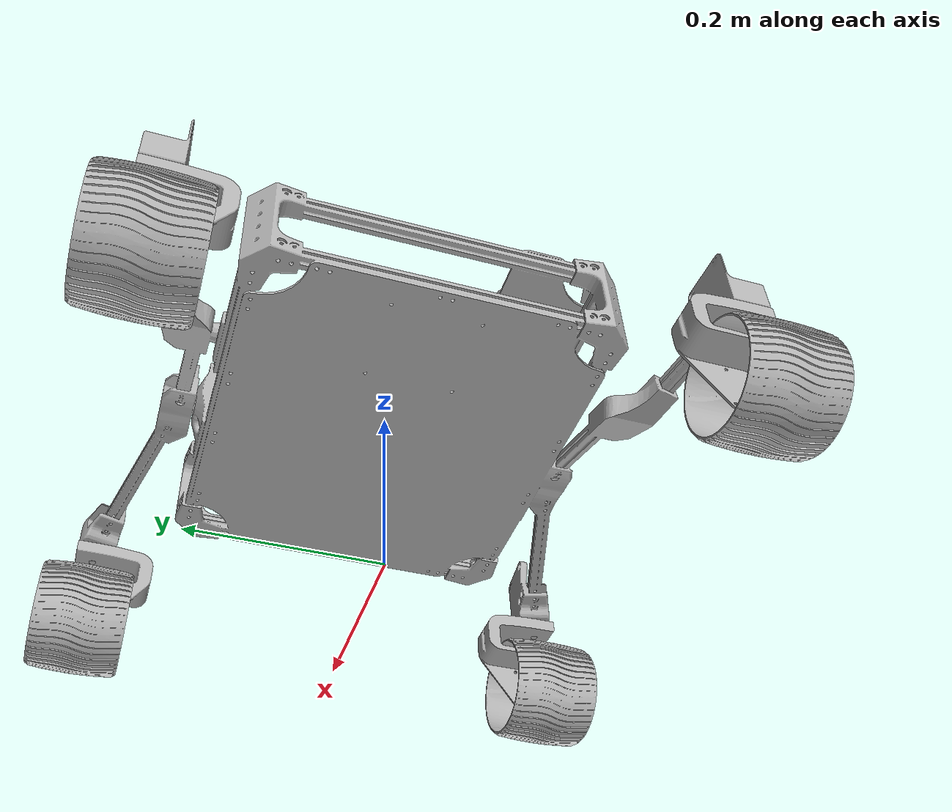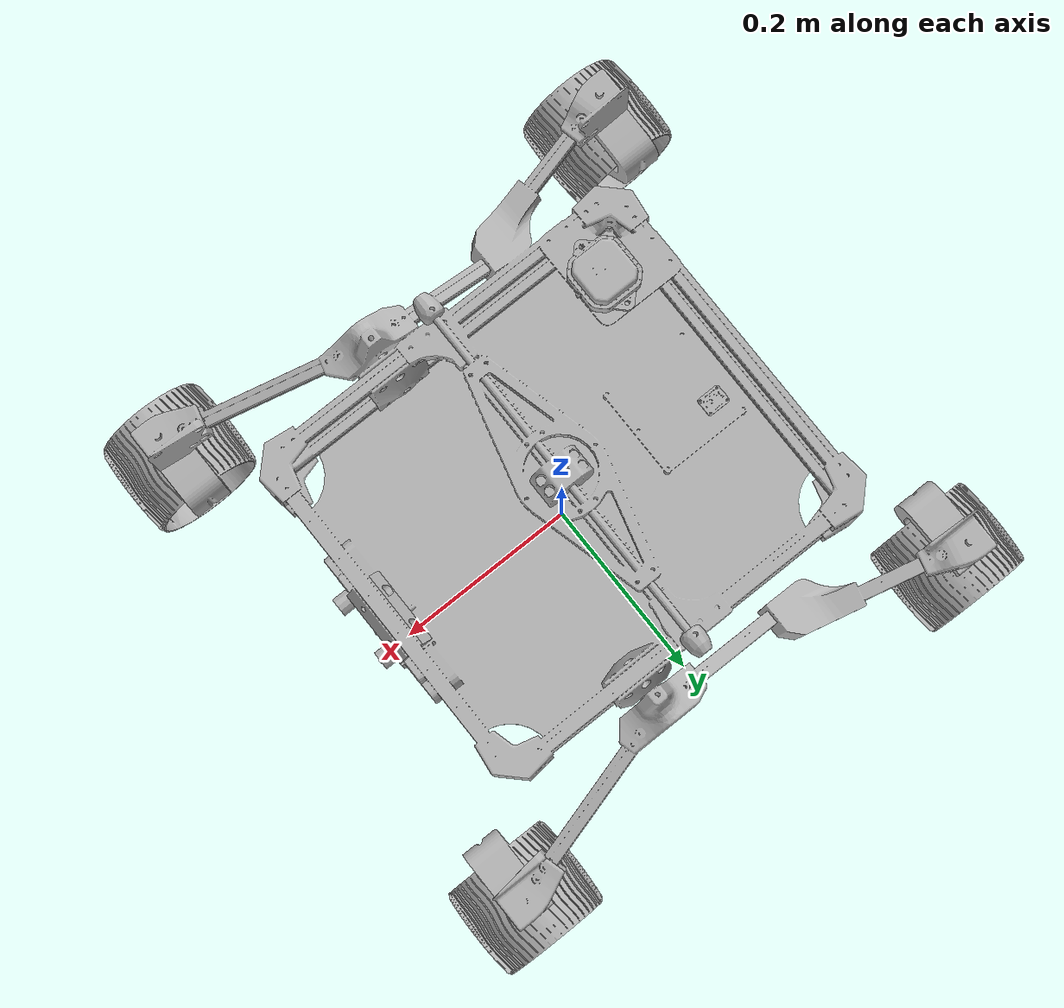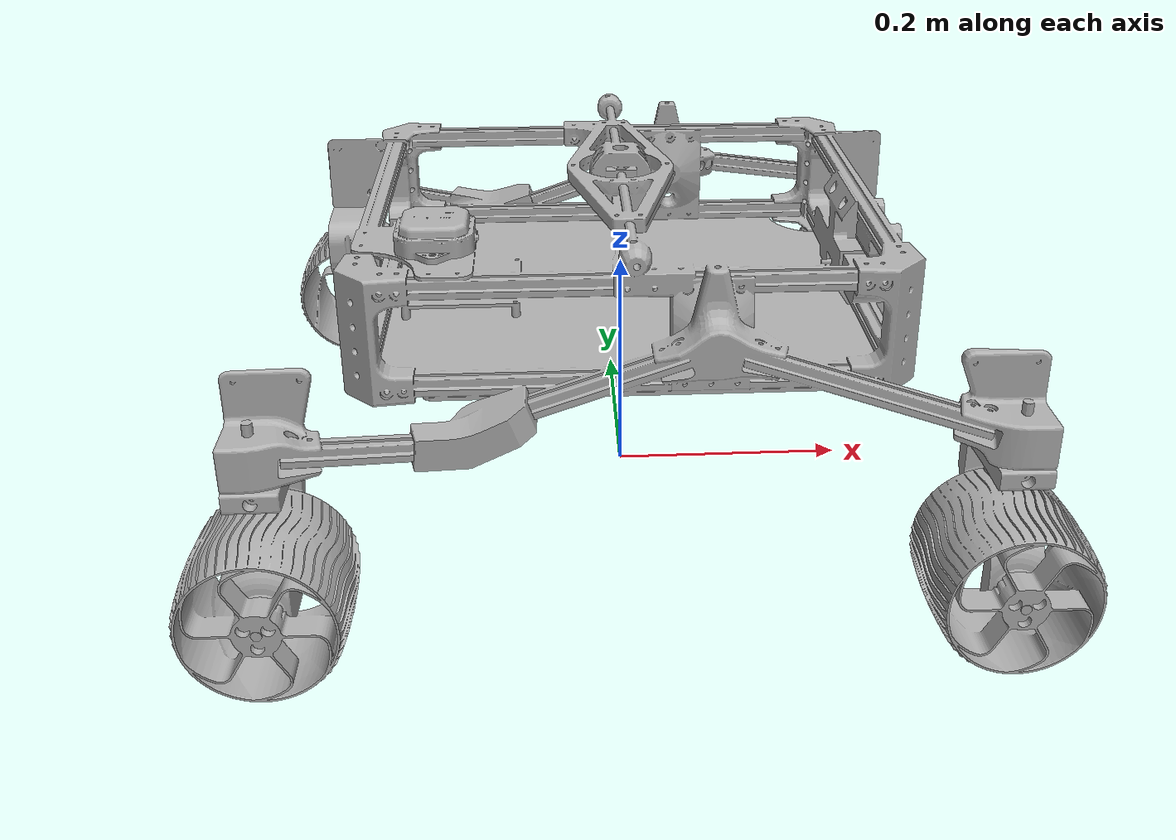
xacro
<?xml version="1.0" ?>
<robot name="mr" xmlns:xacro="http://www.ros.org/wiki/xacro">

<xacro:include filename="$(find mr_description)/urdf/materials.xacro" />
<xacro:include filename="$(find mr_description)/urdf/mr.trans" />
<xacro:include filename="$(find mr_description)/urdf/mr.gazebo" />
<link name="base_link">
  <inertial>
    <origin xyz="0.024026657884178255 -0.0006258179246740081 0.20670151360258557" rpy="0 0 0"/>
    <mass value="21.35468957671006"/>
    <inertia ixx="0.66684" iyy="0.554551" izz="1.15912" ixy="-0.003904" iyz="0.001173" ixz="-0.011842"/>
  </inertial>
  <visual>
    <origin xyz="0 0 0" rpy="0 0 0"/>
    <geometry>
      <mesh filename="package://mr_description/meshes/base_link.stl" scale="0.001 0.001 0.001"/>
    </geometry>
    <material name="silver"/>
  </visual>
  <collision>
    <origin xyz="0 0 0" rpy="0 0 0"/>
    <geometry>
      <mesh filename="package://mr_description/meshes/base_link.stl" scale="0.001 0.001 0.001"/>
    </geometry>
  </collision>
</link>

<link name="gps_frame_1">
  <inertial>
    <origin xyz="0.04203771345163801 -0.04450004444313828 -0.032741799072665945" rpy="0 0 0"/>
    <mass value="0.5490777887987831"/>
    <inertia ixx="0.000171" iyy="0.000157" izz="0.000284" ixy="0.0" iyz="-0.0" ixz="0.0"/>
  </inertial>
  <visual>
    <origin xyz="0.19102 0.078471 -0.310862" rpy="0 0 0"/>
    <geometry>
      <mesh filename="package://mr_description/meshes/gps_frame_1.stl" scale="0.001 0.001 0.001"/>
    </geometry>
    <material name="silver"/>
  </visual>
  <collision>
    <origin xyz="0.19102 0.078471 -0.310862" rpy="0 0 0"/>
    <geometry>
      <mesh filename="package://mr_description/meshes/gps_frame_1.stl" scale="0.001 0.001 0.001"/>
    </geometry>
  </collision>
</link>

<link name="imu_frame_1">
  <inertial>
    <origin xyz="-0.00045074052321916747 -6.454628720427638e-05 0.0010066891826769897" rpy="0 0 0"/>
    <mass value="0.0068771582800528615"/>
    <inertia ixx="0.0" iyy="0.0" izz="1e-06" ixy="-0.0" iyz="0.0" ixz="0.0"/>
  </inertial>
  <visual>
    <origin xyz="0.167686 -0.023354 -0.183862" rpy="0 0 0"/>
    <geometry>
      <mesh filename="package://mr_description/meshes/imu_frame_1.stl" scale="0.001 0.001 0.001"/>
    </geometry>
    <material name="silver"/>
  </visual>
  <collision>
    <origin xyz="0.167686 -0.023354 -0.183862" rpy="0 0 0"/>
    <geometry>
      <mesh filename="package://mr_description/meshes/imu_frame_1.stl" scale="0.001 0.001 0.001"/>
    </geometry>
  </collision>
</link>

<link name="laser_frame_1">
  <inertial>
    <origin xyz="0.0004996109498802137 4.489669068637181e-07 9.742873197104984e-08" rpy="0 0 0"/>
    <mass value="0.00015413438956675583"/>
    <inertia ixx="0.0" iyy="0.0" izz="0.0" ixy="0.0" iyz="0.0" ixz="-0.0"/>
  </inertial>
  <visual>
    <origin xyz="-0.234807 -0.025936 -0.233538" rpy="0 0 0"/>
    <geometry>
      <mesh filename="package://mr_description/meshes/laser_frame_1.stl" scale="0.001 0.001 0.001"/>
    </geometry>
    <material name="silver"/>
  </visual>
  <collision>
    <origin xyz="-0.234807 -0.025936 -0.233538" rpy="0 0 0"/>
    <geometry>
      <mesh filename="package://mr_description/meshes/laser_frame_1.stl" scale="0.001 0.001 0.001"/>
    </geometry>
  </collision>
</link>

<link name="odom_frame_1">
  <inertial>
    <origin xyz="0.0005000940787980579 3.9197321903333346e-07 3.336085294958213e-07" rpy="0 0 0"/>
    <mass value="0.00015413438956675583"/>
    <inertia ixx="0.0" iyy="0.0" izz="0.0" ixy="0.0" iyz="0.0" ixz="0.0"/>
  </inertial>
  <visual>
    <origin xyz="-0.222149 -0.000936 -0.217362" rpy="0 0 0"/>
    <geometry>
      <mesh filename="package://mr_description/meshes/odom_frame_1.stl" scale="0.001 0.001 0.001"/>
    </geometry>
    <material name="silver"/>
  </visual>
  <collision>
    <origin xyz="-0.222149 -0.000936 -0.217362" rpy="0 0 0"/>
    <geometry>
      <mesh filename="package://mr_description/meshes/odom_frame_1.stl" scale="0.001 0.001 0.001"/>
    </geometry>
  </collision>
</link>

<link name="swerve_front_right_frame_1">
  <inertial>
    <origin xyz="0.0010343956323994319 0.018975093583987912 -0.02779662916861418" rpy="0 0 0"/>
    <mass value="1.0189004950565936"/>
    <inertia ixx="0.002056" iyy="0.001238" izz="0.001104" ixy="0.0" iyz="-0.000503" ixz="3.9e-05"/>
  </inertial>
  <visual>
    <origin xyz="-0.269529 0.278957 -0.142207" rpy="0 0 0"/>
    <geometry>
      <mesh filename="package://mr_description/meshes/swerve_front_right_frame_1.stl" scale="0.001 0.001 0.001"/>
    </geometry>
    <material name="silver"/>
  </visual>
  <collision>
    <origin xyz="-0.269529 0.278957 -0.142207" rpy="0 0 0"/>
    <geometry>
      <mesh filename="package://mr_description/meshes/swerve_front_right_frame_1.stl" scale="0.001 0.001 0.001"/>
    </geometry>
  </collision>
</link>

<link name="wheel_front_right_frame_1">
  <inertial>
    <origin xyz="1.362369520530038e-07 0.03942350115985577 -7.786926539653238e-06" rpy="0 0 0"/>
    <mass value="0.9174820903948062"/>
    <inertia ixx="0.001993" iyy="0.002484" izz="0.001993" ixy="0.0" iyz="-0.0" ixz="0.0"/>
  </inertial>
  <visual>
    <origin xyz="-0.26953 0.328957 -0.062207" rpy="0 0 0"/>
    <geometry>
      <mesh filename="package://mr_description/meshes/wheel_front_right_frame_1.stl" scale="0.001 0.001 0.001"/>
    </geometry>
    <material name="silver"/>
  </visual>
  <collision>
    <origin xyz="-0.26953 0.328957 -0.062207" rpy="0 0 0"/>
    <geometry>
      <mesh filename="package://mr_description/meshes/wheel_front_right_frame_1.stl" scale="0.001 0.001 0.001"/>
    </geometry>
  </collision>
</link>

<link name="swerve_back_right_frame_1">
  <inertial>
    <origin xyz="0.0010344132531723282 0.01897509358415106 -0.027797551125660097" rpy="0 0 0"/>
    <mass value="1.0189004950565936"/>
    <inertia ixx="0.002056" iyy="0.001238" izz="0.001104" ixy="0.0" iyz="-0.000503" ixz="3.9e-05"/>
  </inertial>
  <visual>
    <origin xyz="0.269794 0.278957 -0.142203" rpy="0 0 0"/>
    <geometry>
      <mesh filename="package://mr_description/meshes/swerve_back_right_frame_1.stl" scale="0.001 0.001 0.001"/>
    </geometry>
    <material name="silver"/>
  </visual>
  <collision>
    <origin xyz="0.269794 0.278957 -0.142203" rpy="0 0 0"/>
    <geometry>
      <mesh filename="package://mr_description/meshes/swerve_back_right_frame_1.stl" scale="0.001 0.001 0.001"/>
    </geometry>
  </collision>
</link>

<link name="wheel_back_right_frame_1">
  <inertial>
    <origin xyz="1.538577255044693e-07 0.0394235011600188 -8.708883585693827e-06" rpy="0 0 0"/>
    <mass value="0.9174820903948062"/>
    <inertia ixx="0.001993" iyy="0.002484" izz="0.001993" ixy="0.0" iyz="-0.0" ixz="0.0"/>
  </inertial>
  <visual>
    <origin xyz="0.269793 0.328957 -0.062203" rpy="0 0 0"/>
    <geometry>
      <mesh filename="package://mr_description/meshes/wheel_back_right_frame_1.stl" scale="0.001 0.001 0.001"/>
    </geometry>
    <material name="silver"/>
  </visual>
  <collision>
    <origin xyz="0.269793 0.328957 -0.062203" rpy="0 0 0"/>
    <geometry>
      <mesh filename="package://mr_description/meshes/wheel_back_right_frame_1.stl" scale="0.001 0.001 0.001"/>
    </geometry>
  </collision>
</link>

<link name="swerve_back_left_frame_1">
  <inertial>
    <origin xyz="-0.0010334680806184937 -0.018975196395395133 -0.02779756999752095" rpy="0 0 0"/>
    <mass value="1.0189004950565936"/>
    <inertia ixx="0.002056" iyy="0.001238" izz="0.001104" ixy="0.0" iyz="0.000503" ixz="-3.9e-05"/>
  </inertial>
  <visual>
    <origin xyz="0.269794 -0.28083 -0.142203" rpy="0 0 0"/>
    <geometry>
      <mesh filename="package://mr_description/meshes/swerve_back_left_frame_1.stl" scale="0.001 0.001 0.001"/>
    </geometry>
    <material name="silver"/>
  </visual>
  <collision>
    <origin xyz="0.269794 -0.28083 -0.142203" rpy="0 0 0"/>
    <geometry>
      <mesh filename="package://mr_description/meshes/swerve_back_left_frame_1.stl" scale="0.001 0.001 0.001"/>
    </geometry>
  </collision>
</link>

<link name="wheel_back_left_frame_1">
  <inertial>
    <origin xyz="-2.5570862910440084e-07 -0.03942360397126338 -8.708887329546278e-06" rpy="0 0 0"/>
    <mass value="0.9174820903948062"/>
    <inertia ixx="0.001993" iyy="0.002484" izz="0.001993" ixy="0.0" iyz="0.0" ixz="-0.0"/>
  </inertial>
  <visual>
    <origin xyz="0.269793 -0.33083 -0.062203" rpy="0 0 0"/>
    <geometry>
      <mesh filename="package://mr_description/meshes/wheel_back_left_frame_1.stl" scale="0.001 0.001 0.001"/>
    </geometry>
    <material name="silver"/>
  </visual>
  <collision>
    <origin xyz="0.269793 -0.33083 -0.062203" rpy="0 0 0"/>
    <geometry>
      <mesh filename="package://mr_description/meshes/wheel_back_left_frame_1.stl" scale="0.001 0.001 0.001"/>
    </geometry>
  </collision>
</link>

<link name="swerve_front_left_frame_1">
  <inertial>
    <origin xyz="-0.001033485701390724 -0.018975196395395466 -0.027796648039575877" rpy="0 0 0"/>
    <mass value="1.0189004950565936"/>
    <inertia ixx="0.002056" iyy="0.001238" izz="0.001104" ixy="0.0" iyz="0.000503" ixz="-3.9e-05"/>
  </inertial>
  <visual>
    <origin xyz="-0.269529 -0.28083 -0.142207" rpy="0 0 0"/>
    <geometry>
      <mesh filename="package://mr_description/meshes/swerve_front_left_frame_1.stl" scale="0.001 0.001 0.001"/>
    </geometry>
    <material name="silver"/>
  </visual>
  <collision>
    <origin xyz="-0.269529 -0.28083 -0.142207" rpy="0 0 0"/>
    <geometry>
      <mesh filename="package://mr_description/meshes/swerve_front_left_frame_1.stl" scale="0.001 0.001 0.001"/>
    </geometry>
  </collision>
</link>

<link name="wheel_front_left_frame_1">
  <inertial>
    <origin xyz="-2.733294070522696e-07 -0.03942360397126321 -7.786929384752395e-06" rpy="0 0 0"/>
    <mass value="0.9174820903948062"/>
    <inertia ixx="0.001993" iyy="0.002484" izz="0.001993" ixy="0.0" iyz="0.0" ixz="-0.0"/>
  </inertial>
  <visual>
    <origin xyz="-0.26953 -0.33083 -0.062207" rpy="0 0 0"/>
    <geometry>
      <mesh filename="package://mr_description/meshes/wheel_front_left_frame_1.stl" scale="0.001 0.001 0.001"/>
    </geometry>
    <material name="silver"/>
  </visual>
  <collision>
    <origin xyz="-0.26953 -0.33083 -0.062207" rpy="0 0 0"/>
    <geometry>
      <mesh filename="package://mr_description/meshes/wheel_front_left_frame_1.stl" scale="0.001 0.001 0.001"/>
    </geometry>
  </collision>
</link>

<joint name="gps_link" type="fixed">
  <origin xyz="-0.19102 -0.078471 0.310862" rpy="0 0 0"/>
  <parent link="base_link"/>
  <child link="gps_frame_1"/>
</joint>

<joint name="imu_link" type="fixed">
  <origin xyz="-0.167686 0.023354 0.183862" rpy="0 0 0"/>
  <parent link="base_link"/>
  <child link="imu_frame_1"/>
</joint>

<joint name="laser_link" type="fixed">
  <origin xyz="0.234807 0.025936 0.233538" rpy="0 0 0"/>
  <parent link="base_link"/>
  <child link="laser_frame_1"/>
</joint>

<joint name="odom_link" type="fixed">
  <origin xyz="0.222149 0.000936 0.217362" rpy="0 0 0"/>
  <parent link="base_link"/>
  <child link="odom_frame_1"/>
</joint>

<joint name="swerve_front_right_link" type="revolute">
  <origin xyz="0.269529 -0.278957 0.142207" rpy="0 0 0"/>
  <parent link="base_link"/>
  <child link="swerve_front_right_frame_1"/>
  <axis xyz="-9e-06 0.0 1.0"/>
  <limit upper="1.570796" lower="-1.570796" effort="100" velocity="100"/>
  <dynamics damping="0.7"/>
</joint>

<joint name="wheel_front_right_link" type="continuous">
  <origin xyz="1e-06 -0.05 -0.08" rpy="0 0 0"/>
  <parent link="swerve_front_right_frame_1"/>
  <child link="wheel_front_right_frame_1"/>
  <axis xyz="-0.0 1.0 -0.0"/>
</joint>

<joint name="swerve_back_right_link" type="revolute">
  <origin xyz="-0.269794 -0.278957 0.142203" rpy="0 0 0"/>
  <parent link="base_link"/>
  <child link="swerve_back_right_frame_1"/>
  <axis xyz="9e-06 -0.0 1.0"/>
  <limit upper="1.570796" lower="-1.570796" effort="100" velocity="100"/>
  <dynamics damping="0.7"/>
</joint>

<joint name="wheel_back_right_link" type="continuous">
  <origin xyz="1e-06 -0.05 -0.08" rpy="0 0 0"/>
  <parent link="swerve_back_right_frame_1"/>
  <child link="wheel_back_right_frame_1"/>
  <axis xyz="0.0 1.0 0.0"/>
</joint>

<joint name="swerve_back_left_link" type="revolute">
  <origin xyz="-0.269794 0.28083 0.142203" rpy="0 0 0"/>
  <parent link="base_link"/>
  <child link="swerve_back_left_frame_1"/>
  <axis xyz="-9e-06 -0.0 1.0"/>
  <limit upper="1.570796" lower="-1.570796" effort="100" velocity="100"/>
  <dynamics damping="0.7"/>
</joint>

<joint name="wheel_back_left_link" type="continuous">
  <origin xyz="1e-06 0.05 -0.08" rpy="0 0 0"/>
  <parent link="swerve_back_left_frame_1"/>
  <child link="wheel_back_left_frame_1"/>
  <axis xyz="-0.0 1.0 -0.0"/>
</joint>

<joint name="swerve_front_left_link" type="revolute">
  <origin xyz="0.269529 0.28083 0.142207" rpy="0 0 0"/>
  <parent link="base_link"/>
  <child link="swerve_front_left_frame_1"/>
  <axis xyz="-9e-06 -0.0 1.0"/>
  <limit upper="1.570796" lower="-1.570796" effort="100" velocity="100"/>
  <dynamics damping="0.7"/>
</joint>

<joint name="wheel_front_left_link" type="continuous">
  <origin xyz="1e-06 0.05 -0.08" rpy="0 0 0"/>
  <parent link="swerve_front_left_frame_1"/>
  <child link="wheel_front_left_frame_1"/>
  <axis xyz="0.0 1.0 0.0"/>
</joint>

<transmission name="tran1">
  <type>transmission_interface/SimpleTransmission</type>
  <joint name="swerve_front_right_link">
    <hardwareInterface>EffortJointInterface</hardwareInterface>
  </joint>
  <actuator name="motor1">
    <hardwareInterface>EffortJointInterface</hardwareInterface>
    <mechanicalReduction>1</mechanicalReduction>
  </actuator>
</transmission>

<transmission name="tran2">
  <type>transmission_interface/SimpleTransmission</type>
  <joint name="swerve_front_left_link">
    <hardwareInterface>EffortJointInterface</hardwareInterface>
  </joint>
  <actuator name="motor2">
    <hardwareInterface>EffortJointInterface</hardwareInterface>
    <mechanicalReduction>1</mechanicalReduction>
  </actuator>
</transmission>

<transmission name="tran3">
  <type>transmission_interface/SimpleTransmission</type>
  <joint name="swerve_back_right_link">
    <hardwareInterface>EffortJointInterface</hardwareInterface>
  </joint>
  <actuator name="motor3">
    <hardwareInterface>EffortJointInterface</hardwareInterface>
    <mechanicalReduction>1</mechanicalReduction>
  </actuator>
</transmission>

<transmission name="tran4">
  <type>transmission_interface/SimpleTransmission</type>
  <joint name="swerve_back_left_link">
    <hardwareInterface>EffortJointInterface</hardwareInterface>
  </joint>
  <actuator name="motor4">
    <hardwareInterface>EffortJointInterface</hardwareInterface>
    <mechanicalReduction>1</mechanicalReduction>
  </actuator>
</transmission>

</robot>

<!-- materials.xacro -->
<robot name="mr" xmlns:xacro="http://www.ros.org/wiki/xacro" >

<material name="silver">
  <color rgba="0.700 0.700 0.700 1.000"/>
</material>

</robot>

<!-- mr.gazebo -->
<robot name="mr" xmlns:xacro="http://www.ros.org/wiki/xacro" >

<xacro:property name="body_color" value="Gazebo/Silver" />

<!-- ros_control plugin -->
<gazebo>
  <plugin name="gazebo_ros_control" filename="libgazebo_ros_control.so">
    <robotNamespace>/mr</robotNamespace>
    <robotSimType>gazebo_ros_control/DefaultRobotHWSim</robotSimType>
  </plugin>
</gazebo>

<!-- Links -->
<gazebo reference="base_link">
  <material>${body_color}</material>
  <mu1>0.2</mu1>
  <mu2>0.2</mu2>
  <selfCollide>true</selfCollide>
  <gravity>true</gravity>
</gazebo>

<gazebo reference="gps_frame_1">
  <material>${body_color}</material>
  <mu1>0.2</mu1>
  <mu2>0.2</mu2>
  <selfCollide>true</selfCollide>
</gazebo>

<gazebo reference="imu_frame_1">
  <material>${body_color}</material>
  <mu1>0.2</mu1>
  <mu2>0.2</mu2>
  <selfCollide>true</selfCollide>
</gazebo>

<gazebo reference="laser_frame_1">
  <material>${body_color}</material>
  <mu1>0.2</mu1>
  <mu2>0.2</mu2>
  <selfCollide>true</selfCollide>
</gazebo>

<gazebo reference="odom_frame_1">
  <material>${body_color}</material>
  <mu1>0.2</mu1>
  <mu2>0.2</mu2>
  <selfCollide>true</selfCollide>
</gazebo>

<gazebo reference="swerve_front_right_frame_1">
  <material>${body_color}</material>
  <mu1>0.2</mu1>
  <mu2>0.2</mu2>
  <selfCollide>true</selfCollide>
</gazebo>

<gazebo reference="wheel_front_right_frame_1">
  <material>${body_color}</material>
  <mu1>100</mu1>
  <mu2>100</mu2>
  <selfCollide>true</selfCollide>
</gazebo>

<gazebo reference="swerve_back_right_frame_1">
  <material>${body_color}</material>
  <mu1>0.2</mu1>
  <mu2>0.2</mu2>
  <selfCollide>true</selfCollide>
</gazebo>

<gazebo reference="wheel_back_right_frame_1">
  <material>${body_color}</material>
  <mu1>100</mu1>
  <mu2>100</mu2>
  <selfCollide>true</selfCollide>
</gazebo>

<gazebo reference="swerve_back_left_frame_1">
  <material>${body_color}</material>
  <mu1>0.2</mu1>
  <mu2>0.2</mu2>
  <selfCollide>true</selfCollide>
</gazebo>

<gazebo reference="wheel_back_left_frame_1">
  <material>${body_color}</material>
  <mu1>100</mu1>
  <mu2>100</mu2>
  <selfCollide>true</selfCollide>
</gazebo>

<gazebo reference="swerve_front_left_frame_1">
  <material>${body_color}</material>
  <mu1>0.2</mu1>
  <mu2>0.2</mu2>
  <selfCollide>true</selfCollide>
</gazebo>

<gazebo reference="wheel_front_left_frame_1">
  <material>${body_color}</material>
  <mu1>100</mu1>
  <mu2>100</mu2>
  <selfCollide>true</selfCollide>
</gazebo>

<gazebo>
  <plugin name="skid_steer_drive_controller" filename="libgazebo_ros_skid_steer_drive.so">
    <updateRate>20.0</updateRate>
    <robotNamespace>/mr</robotNamespace>
    <leftFrontJoint>wheel_front_left_link</leftFrontJoint>
    <rightFrontJoint>wheel_front_right_link</rightFrontJoint>
    <leftRearJoint>wheel_back_left_link</leftRearJoint>
    <rightRearJoint>wheel_back_right_link</rightRearJoint>
    <wheelSeparation>0.4</wheelSeparation>
    <wheelDiameter>0.215</wheelDiameter>
    <robotBaseFrame>base_link</robotBaseFrame>
    <torque>20</torque>
    <topicName>cmd_vel</topicName>
    <broadcastTF>true</broadcastTF>
  </plugin>
</gazebo>

<gazebo>
  <plugin name="imu_plugin" filename="libgazebo_ros_imu.so">
    <alwaysOn>true</alwaysOn>
    <bodyName>imu_frame_1</bodyName>
    <topicName>/mr/imu/data</topicName>
    <serviceName>imu_service</serviceName>
    <gaussianNoise>0.0</gaussianNoise>
    <updateRate>20.0</updateRate>
  </plugin>
</gazebo>

<gazebo reference="laser_frame_1">
  <sensor type="ray" name="ydlidar">
    <pose>0 0 0 0 0 0</pose>
    <visualize>true</visualize>
    <update_rate>10</update_rate>
    <ray>
      <scan>
        <horizontal>
          <samples>720</samples>
          <resolution>1</resolution>
          <min_angle>-1.0472</min_angle>
          <max_angle>1.0472</max_angle>
        </horizontal>
      </scan>
      <range>
        <min>0.45</min>
        <max>15.0</max>
        <resolution>0.01</resolution>
      </range>
      <noise>
        <type>gaussian</type>
        <mean>0.0</mean>
        <stddev>0.01</stddev>
      </noise>
    </ray>
    <plugin name="gazebo_ros_head_hokuyo_controller" filename="libgazebo_ros_laser.so">
      <topicName>/scan</topicName>
      <frameName>laser_frame_1</frameName>
    </plugin>
  </sensor>
</gazebo>

 <!-- camera -->
  <gazebo reference="odom_frame_1">
    <sensor type="camera" name="camera1">
      <update_rate>30.0</update_rate>
      <camera name="head">
        <horizontal_fov>1.91986</horizontal_fov>
        <image>
          <width>1920</width>
          <height>1080</height>
          <format>R8G8B8</format>
        </image>
        <clip>
          <near>0.02</near>
          <far>300</far>
        </clip>
        <noise>
          <type>gaussian</type>
          <!-- Noise is sampled independently per pixel on each frame.
               That pixel's noise value is added to each of its color
               channels, which at that point lie in the range [0,1]. -->
          <mean>0.0</mean>
          <stddev>0.007</stddev>
        </noise>
      </camera>
      <plugin name="camera_controller" filename="libgazebo_ros_camera.so">
        <alwaysOn>true</alwaysOn>
        <updateRate>0.0</updateRate>
        <cameraName>mr/camera1</cameraName>
        <imageTopicName>image_raw</imageTopicName>
        <cameraInfoTopicName>camera_info</cameraInfoTopicName>
        <frameName>odom_frame_1</frameName>
        <hackBaseline>0.07</hackBaseline>
        <distortionK1>0.0</distortionK1>
        <distortionK2>0.0</distortionK2>
        <distortionK3>0.0</distortionK3>
        <distortionT1>0.0</distortionT1>
        <distortionT2>0.0</distortionT2>
      </plugin>
    </sensor>
  </gazebo>

</robot>
